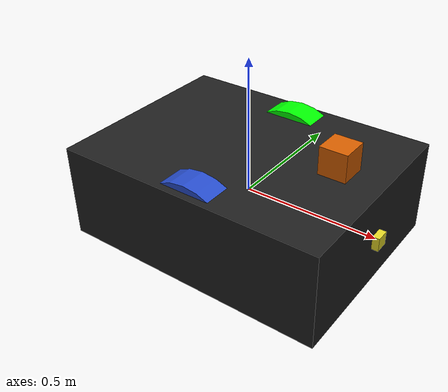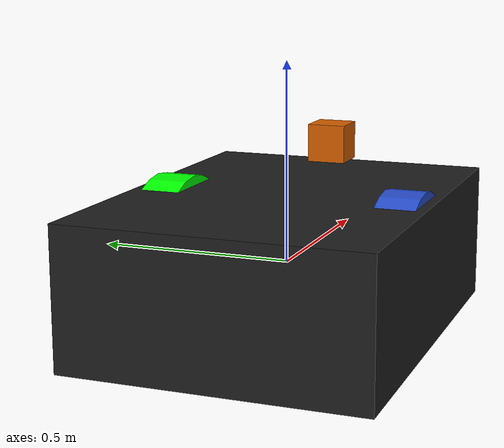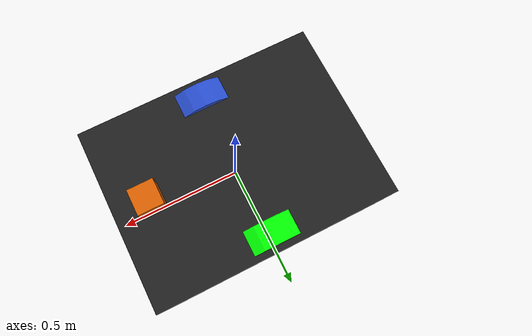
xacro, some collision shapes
<?xml version='1.0'?>

<robot name="my_robot" xmlns:xacro="http://www.ros.org/wiki/xacro">

  <xacro:include filename="$(find my_robot)/urdf/my_robot.gazebo"/>

  <link name="robot_footprint"></link>

  <joint name="robot_footprint_joint" type="fixed">
    <origin xyz="0 0 0" rpy="0 0 0" />
    <parent link="robot_footprint"/>
    <child link="chassis" />
  </joint>

  <link name='chassis'>
    <pose>0 0 0.1 0 0 0</pose>

    <inertial>
      <mass value="15.0"/>
      <origin xyz="0.0 0 0" rpy=" 0 0 0"/>
      <inertia
          ixx="0.1" ixy="0" ixz="0"
          iyy="0.1" iyz="0"
          izz="0.1"
      />
    </inertial>

    <collision name='collision'>
      <origin xyz="0 0 0" rpy=" 0 0 0"/>
      <geometry>
        <box size="1 .75 .35"/>
      </geometry>
    </collision>

    <visual name='chassis_visual'>
      <origin xyz="0 0 0" rpy=" 0 0 0"/>
      <geometry>
        <box size="1 .75 .35"/>
      </geometry>
    </visual>

    <collision name='back_caster_collision'>
      <origin xyz="-0.15 0 -0.1" rpy=" 0 0 0"/>
      <geometry>
        <sphere radius="0.099"/>
      </geometry>
    </collision>

    <visual name='back_caster_visual'>
      <origin xyz="-0.15 0 -0.1" rpy=" 0 0 0"/>
      <geometry>
        <sphere radius="0.099"/>
      </geometry>
    </visual>

    <collision name='front_caster_collision'>
      <origin xyz="0.15 0 -0.1" rpy=" 0 0 0"/>
      <geometry>
        <sphere radius="0.099"/>
      </geometry>
    </collision>

    <visual name='front_caster_visual'>
      <origin xyz="0.15 0 -0.1" rpy=" 0 0 0"/>
      <geometry>
        <sphere radius="0.099"/>
      </geometry>
    </visual>

  </link>

  <gazebo reference="chassis">
    <material>Gazebo/FlatBlack</material>
  </gazebo>

  <link name='left_wheel'>
    <inertial>
      <mass value="5.0"/>
      <origin xyz="0.0 0 0" rpy="0 0 0"/>
      <inertia
          ixx="0.1" ixy="0" ixz="0"
          iyy="0.1" iyz="0"
          izz="0.1"
      />
    </inertial>

    <collision name='left_wheel_collision'>
      <origin xyz="0 0 0" rpy="0 1.5707 1.5707"/>
      <geometry>
        <cylinder length="0.1" radius="0.2"/>
      </geometry>
    </collision>

    <visual name='left_wheel_visual'>
      <origin xyz="0 0 0" rpy="0 1.5707 1.5707"/>
      <geometry>
        <cylinder length="0.1" radius="0.2"/>
      </geometry>
      <material name="green_chasis">
        <color rgba="0 1.0 0.0 1.0"/>
      </material>
    </visual>
  </link>

  <gazebo reference="left_wheel">
    <material>Gazebo/Blue</material>
  </gazebo>

  <link name='right_wheel'>
    <inertial>
      <mass value="5.0"/>
      <origin xyz="0.0 0 0" rpy="0 0 0"/>
      <inertia
          ixx="0.1" ixy="0" ixz="0"
          iyy="0.1" iyz="0"
          izz="0.1"
      />
    </inertial>

    <collision>
      <origin xyz="0 0 0" rpy="0 1.5707 1.5707"/>
      <geometry>
        <cylinder length="0.1" radius="0.2"/>
      </geometry>

    </collision>

    <visual name='right_wheel_visual'>
      <origin xyz="0 0 0" rpy="0 1.5707 1.5707"/>
      <geometry>
        <cylinder length="0.1" radius="0.2"/>
      </geometry>
      <material name="right_wheel_material">
        <ambient>0.1 0.1 0.1 1.0</ambient>
        <diffuse>1.0 0.0 0.0 0.0</diffuse>
        <specular>0.5 0.5 0.5 1.0</specular>
        <emissive>0.0 0.0 0.0 1.0</emissive>
      </material>
    </visual>
  </link>

  <gazebo reference="right_wheel">
    <material>Gazebo/Blue</material>
  </gazebo>

  <joint type="continuous" name="left_wheel_hinge">
    <origin xyz="0 0.3 0" rpy="0 0 0"/>
    <child link="left_wheel"/>
    <parent link="chassis"/>
    <axis xyz="0 1 0" rpy="0 0 0"/>
    <limit effort="10000" velocity="5000"/>
    <dynamics damping="1.0" friction="0.5"/>
  </joint>

  <joint type="continuous" name="right_wheel_hinge">
    <origin xyz="0 -0.3 0" rpy="0 0 0"/>
    <child link="right_wheel"/>
    <parent link="chassis"/>
    <axis xyz="0 1 0" rpy="0 0 0"/>
    <limit effort="10000" velocity="5000"/>
    <dynamics damping="1.0" friction="0.5"/>
  </joint>

  <link name='camera'>
    <inertial>
      <mass value="0.5"/>
      <origin xyz="0.0 0 0" rpy=" 0 0 0"/>
      <inertia
          ixx="1e-6" ixy="0" ixz="0"
          iyy="1e-6" iyz="0"
          izz="1e-6"
      />
    </inertial>

    <collision name='camera_collision'>
      <origin xyz="0 0 0" rpy=" 0 0 0"/>
      <geometry>
        <box size="0.05 0.05 0.05"/>
      </geometry>
    </collision>

    <visual name='camera_visual'>
      <origin xyz="0 0 0" rpy=" 0 0 0"/>
      <geometry>
        <box size="0.05 0.05 0.05"/>
      </geometry>
    </visual>
  </link>

  <gazebo reference="camera">
    <material>Gazebo/Yellow</material>
  </gazebo>

  <joint name="camera_joint" type="fixed">
    <origin xyz="0.5 0 0" rpy="0 0 0"/>
    <parent link="chassis"/>
    <child link="camera"/>
    <axis xyz="0 1 0"/>
  </joint>

  <link name="hokuyo">
    <inertial>
      <mass value="1e-5"/>
      <origin xyz="0.0 0 0" rpy=" 0 0 0"/>
      <inertia
          ixx="1e-6" ixy="0" ixz="0"
          iyy="1e-6" iyz="0"
          izz="1e-6"
      />
    </inertial>

    <collision name='hokuyo_collision'>
      <origin xyz="0 0 0" rpy=" 0 0 0"/>
      <geometry>
        <box size="0.1 0.1 0.1"/>
      </geometry>
    </collision>

    <visual name='hokuyo_visual'>
      <origin xyz="0 0 0" rpy=" 0 0 0"/>
      <geometry>
        <mesh filename="package://my_robot/meshes/hokuyo.dae"/>
      </geometry>
    </visual>
  </link>

  <joint name="hokuyo_joint" type="fixed">
    <origin xyz="0.35 0 .25" rpy="0 0 0"/>
    <parent link="chassis"/>
    <child link="hokuyo"/>
    <axis xyz="0 1 0"/>
  </joint>

</robot>
